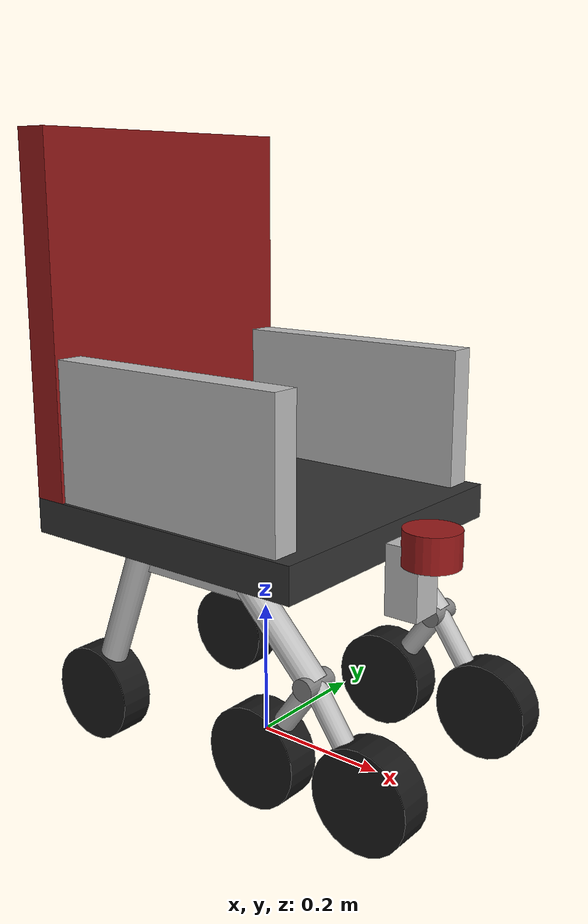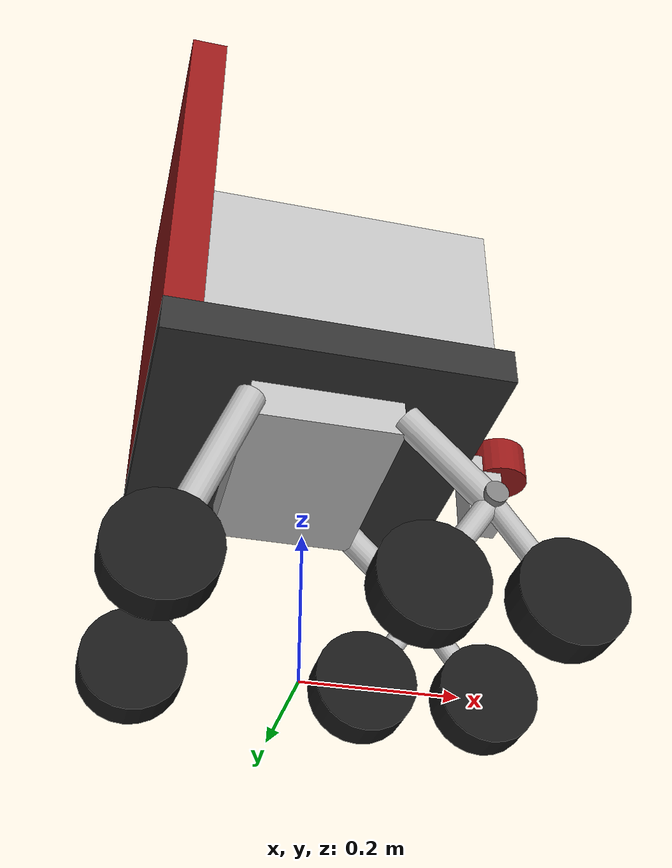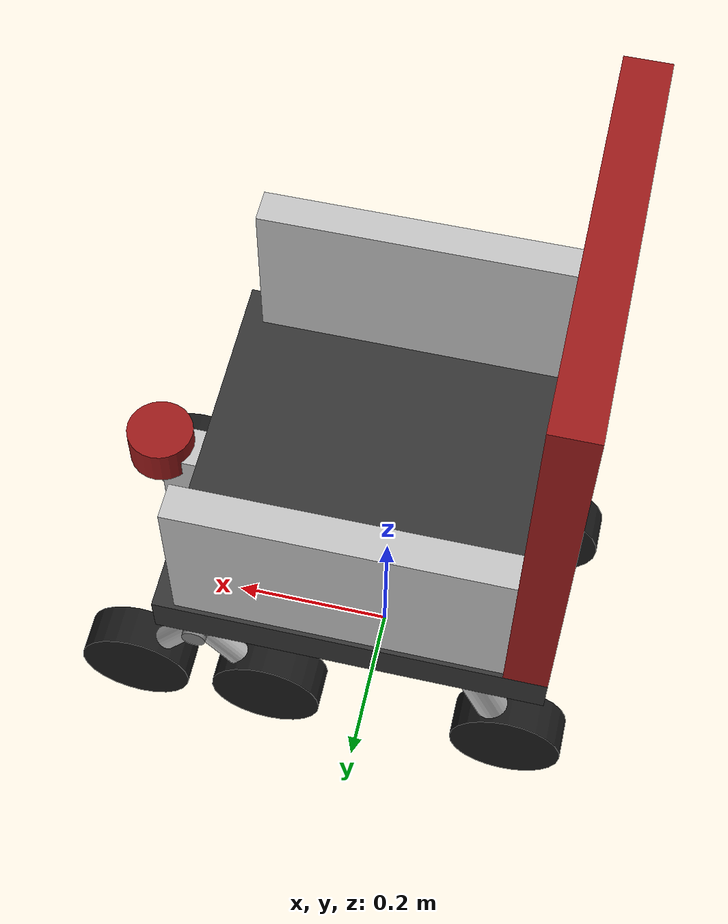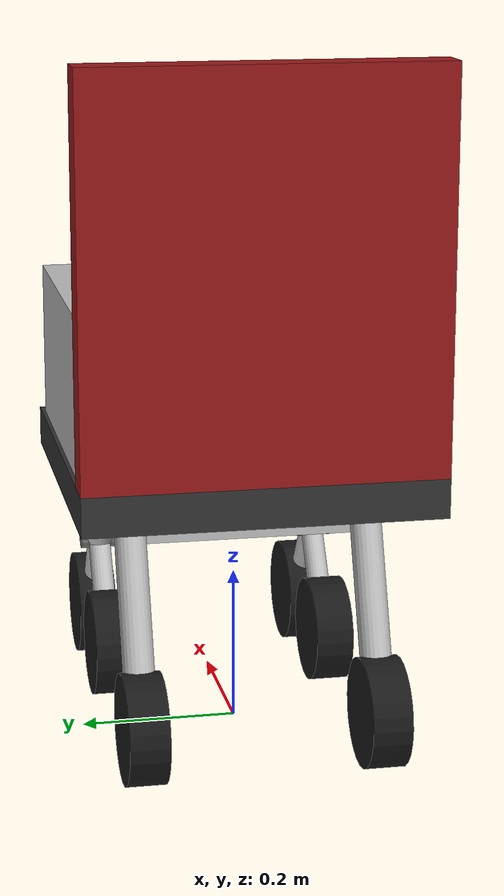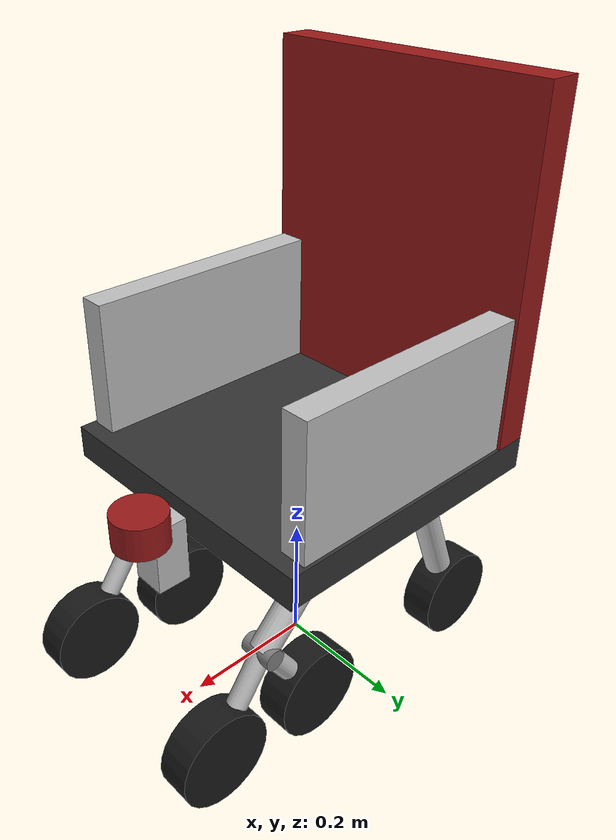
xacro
<?xml version="1.0"?>
<robot xmlns:xacro="http://ros.org/wiki/xacro" name="medical_wheelchair">

  <!-- Materials -->
  <material name="silver"><color rgba="0.75 0.75 0.75 1"/></material>
  <material name="dark_grey"><color rgba="0.2 0.2 0.2 1"/></material>
  <material name="fabric_red"><color rgba="0.6 0.1 0.1 1"/></material>
  <material name="black"><color rgba="0.1 0.1 0.1 1"/></material>
  <material name="grey"><color rgba="0.5 0.5 0.5 1"/></material>

  <!-- Inertia Macros -->
  <xacro:macro name="box_inertia" params="m w h d">
    <inertial>
      <origin xyz="0 0 0" rpy="0 0 0"/>
      <mass value="${m}"/>
      <inertia ixx="${(m/12)*(h*h + d*d)}" ixy="0" ixz="0" iyy="${(m/12)*(w*w + d*d)}" iyz="0" izz="${(m/12)*(w*w + h*h)}"/>
    </inertial>
  </xacro:macro>

  <xacro:macro name="cylinder_inertia" params="m r h">
    <inertial>
      <origin xyz="0 0 0" rpy="0 0 0"/>
      <mass value="${m}"/>
      <inertia ixx="${(m/12)*(3*r*r + h*h)}" ixy="0" ixz="0" iyy="${(m/12)*(3*r*r + h*h)}" iyz="0" izz="${(m/2)*r*r}"/>
    </inertial>
  </xacro:macro>

  <xacro:macro name="tubular_link" params="name length radius m material">
    <link name="${name}">
      <xacro:cylinder_inertia m="${m}" r="${radius}" h="${length}"/>
      <visual>
        <origin xyz="${length/2} 0 0" rpy="0 1.5708 0"/>
        <geometry><cylinder radius="${radius}" length="${length}"/></geometry>
        <material name="${material}"/>
      </visual>
      <collision>
        <origin xyz="${length/2} 0 0" rpy="0 1.5708 0"/>
        <geometry><cylinder radius="${radius}" length="${length}"/></geometry>
      </collision>
    </link>
  </xacro:macro>

  <!-- Base Footprint -->
  <link name="base_footprint">
    <inertial>
      <mass value="0.01"/>
      <inertia ixx="0.0001" ixy="0" ixz="0" iyy="0.0001" iyz="0" izz="0.0001"/>
    </inertial>
  </link>

  <joint name="base_footprint_joint" type="fixed">
    <parent link="base_footprint"/>
    <child link="base_link"/>
    <origin xyz="0 0 0.35" rpy="0 0 0"/>
  </joint>

  <!-- Base Link (Seat) -->
  <link name="base_link">
    <xacro:box_inertia m="5.0" w="0.45" h="0.45" d="0.05"/>
    <visual>
      <geometry><box size="0.45 0.45 0.05"/></geometry>
      <material name="dark_grey"/>
    </visual>
    <collision>
      <geometry><box size="0.45 0.45 0.05"/></geometry>
    </collision>
  </link>

  <!-- Backrest -->
  <link name="backrest">
    <xacro:box_inertia m="2.0" w="0.05" h="0.45" d="0.5"/>
    <visual>
      <geometry><box size="0.05 0.45 0.5"/></geometry>
      <material name="fabric_red"/>
    </visual>
    <collision>
      <geometry><box size="0.05 0.45 0.5"/></geometry>
    </collision>
  </link>
  <joint name="backrest_joint" type="fixed">
    <parent link="base_link"/>
    <child link="backrest"/>
    <origin xyz="-0.2 0 0.275" rpy="0 0 0"/>
  </joint>

  <!-- Armrests -->
  <link name="left_armrest">
    <xacro:box_inertia m="1.0" w="0.4" h="0.04" d="0.2"/>
    <visual><geometry><box size="0.4 0.04 0.2"/></geometry><material name="silver"/></visual>
    <collision><geometry><box size="0.4 0.04 0.2"/></geometry></collision>
  </link>
  <joint name="left_armrest_joint" type="fixed">
    <parent link="base_link"/>
    <child link="left_armrest"/>
    <origin xyz="0 0.2 0.125" rpy="0 0 0"/>
  </joint>

  <link name="right_armrest">
    <xacro:box_inertia m="1.0" w="0.4" h="0.04" d="0.2"/>
    <visual><geometry><box size="0.4 0.04 0.2"/></geometry><material name="silver"/></visual>
    <collision><geometry><box size="0.4 0.04 0.2"/></geometry></collision>
  </link>
  <joint name="right_armrest_joint" type="fixed">
    <parent link="base_link"/>
    <child link="right_armrest"/>
    <origin xyz="0 -0.2 0.125" rpy="0 0 0"/>
  </joint>

  <!-- Main Chassis Hub -->
  <link name="chassis_hub">
    <xacro:box_inertia m="10.0" w="0.2" h="0.3" d="0.05"/>
    <visual>
      <origin xyz="0 0 0" rpy="0 0 0"/>
      <geometry><box size="0.2 0.3 0.05"/></geometry>
      <material name="silver"/>
    </visual>
    <collision>
      <origin xyz="0 0 0" rpy="0 0 0"/>
      <geometry><box size="0.2 0.3 0.05"/></geometry>
    </collision>
  </link>
  <joint name="chassis_hub_joint" type="fixed">
    <parent link="base_link"/>
    <child link="chassis_hub"/>
    <origin xyz="0 0 -0.05" rpy="0 0 0"/>
  </joint>

  <!-- LiDAR Sensor & Mount -->
  <link name="lidar_mount">
    <visual>
      <origin xyz="0 0 0" rpy="0 0 0"/>
      <geometry><box size="0.05 0.05 0.1"/></geometry>
      <material name="silver"/>
    </visual>
  </link>

  <joint name="lidar_mount_joint" type="fixed">
    <parent link="base_link"/>
    <child link="lidar_mount"/>
    <origin xyz="0.25 0 -0.05" rpy="0 0 0"/> <!-- At the front edge of the seat base, angled down -->
  </joint>

  <link name="lidar_link">
    <inertial>
      <mass value="0.1"/>
      <inertia ixx="0.0001" ixy="0" ixz="0" iyy="0.0001" iyz="0" izz="0.0001"/>
    </inertial>
    <visual>
      <origin xyz="0 0 0" rpy="0 0 0"/>
      <geometry><cylinder radius="0.04" length="0.05"/></geometry>
      <material name="fabric_red"/>
    </visual>
    <collision>
      <origin xyz="0 0 0" rpy="0 0 0"/>
      <geometry><cylinder radius="0.04" length="0.05"/></geometry>
    </collision>
  </link>

  <joint name="lidar_joint" type="fixed">
    <parent link="lidar_mount"/>
    <child link="lidar_link"/>
    <origin xyz="0.03 0 0.05" rpy="0 0 0"/>
  </joint>

  <gazebo reference="lidar_link">
    <sensor name="gpu_lidar" type="gpu_lidar">
      <pose>0 0 0 0 0 0</pose>
      <topic>/scan</topic>
      <ignition_frame_id>wheelchair/lidar_link</ignition_frame_id>
      <update_rate>10</update_rate>
      <ray>
        <scan>
          <horizontal>
            <samples>360</samples>
            <resolution>1</resolution>
            <min_angle>-3.14159</min_angle>
            <max_angle>3.14159</max_angle>
          </horizontal>
        </scan>
        <range>
          <min>0.12</min>
          <max>10.0</max>
          <resolution>0.01</resolution>
        </range>
      </ray>
      <visualize>true</visualize>
    </sensor>
  </gazebo>

  <!-- Navigation Macros for Sides -->
  <xacro:macro name="chassis_side" params="side reflect">
    <!-- Rear Sloped Arm -->
    <xacro:tubular_link name="rear_arm_${side}" length="0.25" radius="0.02" m="0.5" material="silver"/>
    <joint name="rear_arm_${side}_joint" type="fixed">
      <parent link="chassis_hub"/>
      <child link="rear_arm_${side}"/>
      <origin xyz="-0.1 ${reflect * 0.15} 0" rpy="0 1.2 3.14159"/>
    </joint>

    <!-- Rear Wheel -->
    <link name="rear_${side}_wheel">
      <xacro:cylinder_inertia m="0.8" r="0.07" h="0.05"/>
      <visual>
        <origin xyz="0 0 0" rpy="1.5708 0 0"/>
        <geometry><cylinder radius="0.07" length="0.05"/></geometry>
        <material name="black"/>
      </visual>
      <collision>
        <origin xyz="0 0 0" rpy="1.5708 0 0"/>
        <geometry><cylinder radius="0.07" length="0.05"/></geometry>
      </collision>
      <gazebo reference="rear_${side}_wheel">
        <mu1>0.2</mu1>
        <mu2>0.2</mu2>
        <self_collide>false</self_collide>
      </gazebo>
    </link>
    <joint name="rear_${side}_wheel_joint" type="continuous">
      <parent link="rear_arm_${side}"/>
      <child link="rear_${side}_wheel"/>
      <origin xyz="0.25 0 0" rpy="0 -1.2 0"/>
      <axis xyz="0 -1 0"/>
      <limit effort="10" velocity="15"/>
    </joint>

    <!-- Front Sloped Arm -->
    <xacro:tubular_link name="front_arm_${side}" length="0.15" radius="0.02" m="0.5" material="silver"/>
    <joint name="front_arm_${side}_joint" type="fixed">
      <parent link="chassis_hub"/>
      <child link="front_arm_${side}"/>
      <origin xyz="0.1 ${reflect * 0.15} 0" rpy="0 0.8 0"/>
    </joint>

    <!-- Bogie Pivot -->
    <link name="bogie_pivot_${side}">
      <xacro:cylinder_inertia m="0.1" r="0.015" h="0.05"/>
      <visual>
        <origin xyz="0 0 0" rpy="1.5708 0 0"/>
        <geometry><cylinder radius="0.015" length="0.05"/></geometry>
        <material name="grey"/>
      </visual>
    </link>
    <joint name="bogie_pivot_${side}_joint" type="revolute">
      <parent link="front_arm_${side}"/>
      <child link="bogie_pivot_${side}"/>
      <origin xyz="0.15 0 0" rpy="0 0 0"/>
      <axis xyz="0 1 0"/>
      <limit effort="10" velocity="1" lower="-0.5" upper="0.5"/>
      <dynamics damping="1.0" friction="0.1"/>
    </joint>

    <!-- Inverted V Bogie branches -->
    <!-- Middle branch -->
    <xacro:tubular_link name="bogie_middle_arm_${side}" length="0.15" radius="0.015" m="0.3" material="silver"/>
    <joint name="bogie_middle_arm_joint_${side}" type="fixed">
      <parent link="bogie_pivot_${side}"/>
      <child link="bogie_middle_arm_${side}"/>
      <origin xyz="0 0 0" rpy="0 1.38 0"/>
    </joint>

    <!-- Front branch -->
    <xacro:tubular_link name="bogie_front_arm_${side}" length="0.15" radius="0.015" m="0.3" material="silver"/>
    <joint name="bogie_front_arm_joint_${side}" type="fixed">
      <parent link="bogie_pivot_${side}"/>
      <child link="bogie_front_arm_${side}"/>
      <origin xyz="0 0 0" rpy="0 0.16 0"/>
    </joint>

    <!-- Front Wheel -->
    <link name="front_${side}_wheel">
      <xacro:cylinder_inertia m="0.5" r="0.07" h="0.05"/>
      <visual>
        <origin xyz="0 0 0" rpy="1.5708 0 0"/>
        <geometry><cylinder radius="0.07" length="0.05"/></geometry>
        <material name="black"/>
      </visual>
      <collision>
        <origin xyz="0 0 0" rpy="1.5708 0 0"/>
        <geometry><cylinder radius="0.07" length="0.05"/></geometry>
      </collision>
      <gazebo reference="front_${side}_wheel">
        <mu1>0.2</mu1>
        <mu2>0.2</mu2>
        <self_collide>false</self_collide>
      </gazebo>
    </link>
    <joint name="front_${side}_wheel_joint" type="continuous">
      <parent link="bogie_front_arm_${side}"/>
      <child link="front_${side}_wheel"/>
      <origin xyz="0.15 0 0" rpy="0 -0.16 0"/>
      <axis xyz="0 1 0"/>
      <limit effort="10" velocity="15"/>
    </joint>

    <!-- Middle Wheel -->
    <link name="middle_${side}_wheel">
      <xacro:cylinder_inertia m="0.5" r="0.07" h="0.05"/>
      <visual>
        <origin xyz="0 0 0" rpy="1.5708 0 0"/>
        <geometry><cylinder radius="0.07" length="0.05"/></geometry>
        <material name="black"/>
      </visual>
      <collision>
        <origin xyz="0 0 0" rpy="1.5708 0 0"/>
        <geometry><cylinder radius="0.07" length="0.05"/></geometry>
      </collision>
      <gazebo reference="middle_${side}_wheel">
        <mu1>1.0</mu1>
        <mu2>1.0</mu2>
        <self_collide>false</self_collide>
      </gazebo>
    </link>
    <joint name="middle_${side}_wheel_joint" type="continuous">
      <parent link="bogie_middle_arm_${side}"/>
      <child link="middle_${side}_wheel"/>
      <origin xyz="0.15 0 0" rpy="0 -1.38 0"/>
      <axis xyz="0 1 0"/>
      <limit effort="10" velocity="15"/>
    </joint>
  </xacro:macro>

  <xacro:chassis_side side="left" reflect="1"/>
  <xacro:chassis_side side="right" reflect="-1"/>

  <!-- Gazebo Plugins -->
  <gazebo>
    <plugin
      filename="gz-sim-diff-drive-system"
      name="gz::sim::systems::DiffDrive">
      <namespace>/</namespace>
      <left_joint>rear_left_wheel_joint</left_joint>
      <left_joint>middle_left_wheel_joint</left_joint>
      <left_joint>front_left_wheel_joint</left_joint>
      <right_joint>rear_right_wheel_joint</right_joint>
      <right_joint>middle_right_wheel_joint</right_joint>
      <right_joint>front_right_wheel_joint</right_joint>
      <wheel_separation>0.5</wheel_separation>
      <wheel_radius>0.07</wheel_radius>
      <topic>/cmd_vel</topic>
      <odom_topic>/odom</odom_topic>
      <tf_topic>/tf</tf_topic>
      <publish_odom>true</publish_odom>
      <publish_odom_tf>true</publish_odom_tf>
      <publish_wheel_tf>false</publish_wheel_tf>
      <odometry_frame>odom</odometry_frame>
      <robot_base_frame>base_footprint</robot_base_frame>
    </plugin>

    <plugin
      filename="gz-sim-joint-state-publisher-system"
      name="gz::sim::systems::JointStatePublisher">
      <topic>/joint_states</topic>
      <joint_name>rear_left_wheel_joint</joint_name>
      <joint_name>rear_right_wheel_joint</joint_name>
      <joint_name>middle_left_wheel_joint</joint_name>
      <joint_name>middle_right_wheel_joint</joint_name>
      <joint_name>front_left_wheel_joint</joint_name>
      <joint_name>front_right_wheel_joint</joint_name>
      <joint_name>bogie_pivot_left_joint</joint_name>
      <joint_name>bogie_pivot_right_joint</joint_name>
    </plugin>
  </gazebo>

</robot>
